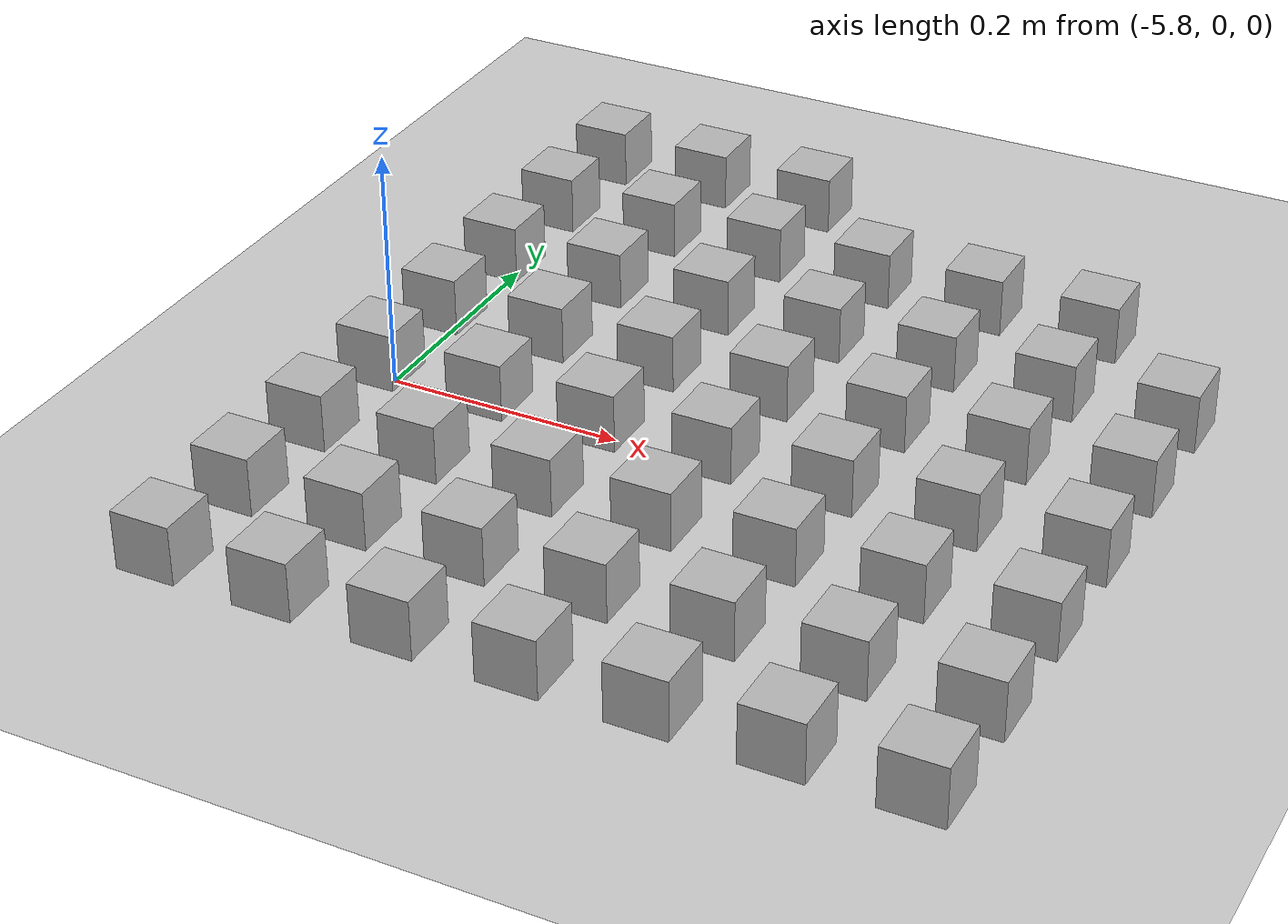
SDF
<sdf version="1.4">
 <world name="default">
  <model name="ground_plane">
   <static>1</static>
   <link name="link">
    <collision name="collision">
     <geometry><plane><normal>0 0 1</normal><size>100 100</size></plane></geometry>
     <surface><friction><ode><mu>100</mu><mu2>50</mu2></ode></friction></surface>
    </collision>
    <visual name="visual">
     <cast_shadows>0</cast_shadows>
     <geometry><plane><normal>0 0 1</normal><size>100 100</size></plane></geometry>
     <material>
      <script><uri>file://media/materials/scripts/gazebo.material</uri><name>Gazebo/Grey</name></script>
     </material>
    </visual>
    <velocity_decay><linear>0</linear><angular>0</angular></velocity_decay>
   </link>
  </model>
  <model name="at0">
   <static>0</static>
   <link name="link">
    <inertial>
     <mass>0.01</mass>
     <inertia><ixx>4e-05</ixx><ixy>0</ixy><ixz>0</ixz><iyy>4e-05</iyy><iyz>0</iyz><izz>4e-05</izz></inertia>
    </inertial>
    <visual name="visual">
     <geometry><box><size>0.05 0.05 0.05</size></box></geometry>
     <material>
      <script>
       <uri>model://at0/materials/scripts</uri>
       <uri>model://at0/materials/textures</uri>
       <name>at0/Diffuse</name>
      </script>
     </material>
    </visual>
    <collision name="collision">
     <geometry><box><size>0.05 0.05 0.05</size></box></geometry>
     <surface><friction><ode><mu>0.8</mu><mu2>0.7</mu2></ode></friction></surface>
    </collision>
    <velocity_decay><linear>0</linear><angular>0</angular></velocity_decay>
   </link>
   <pose>-5.81833 -0.290348 0.025 0 -0 0</pose>
  </model>
  <model name="at1">
   <static>0</static>
   <link name="link">
    <inertial>
     <mass>0.01</mass>
     <inertia><ixx>4e-05</ixx><ixy>0</ixy><ixz>0</ixz><iyy>4e-05</iyy><iyz>0</iyz><izz>4e-05</izz></inertia>
    </inertial>
    <visual name="visual">
     <geometry><box><size>0.05 0.05 0.05</size></box></geometry>
     <material>
      <script>
       <uri>model://at0/materials/scripts</uri>
       <uri>model://at0/materials/textures</uri>
       <name>at0/Diffuse</name>
      </script>
     </material>
    </visual>
    <collision name="collision">
     <geometry><box><size>0.05 0.05 0.05</size></box></geometry>
     <surface><friction><ode><mu>0.8</mu><mu2>0.7</mu2></ode></friction></surface>
    </collision>
    <velocity_decay><linear>0</linear><angular>0</angular></velocity_decay>
   </link>
   <pose>-5.71833 -0.290348 0.025 0 -0 0</pose>
  </model>
  <model name="at2">
   <static>0</static>
   <link name="link">
    <inertial>
     <mass>0.01</mass>
     <inertia><ixx>4e-05</ixx><ixy>0</ixy><ixz>0</ixz><iyy>4e-05</iyy><iyz>0</iyz><izz>4e-05</izz></inertia>
    </inertial>
    <visual name="visual">
     <geometry><box><size>0.05 0.05 0.05</size></box></geometry>
     <material>
      <script>
       <uri>model://at0/materials/scripts</uri>
       <uri>model://at0/materials/textures</uri>
       <name>at0/Diffuse</name>
      </script>
     </material>
    </visual>
    <collision name="collision">
     <geometry><box><size>0.05 0.05 0.05</size></box></geometry>
     <surface><friction><ode><mu>0.8</mu><mu2>0.7</mu2></ode></friction></surface>
    </collision>
    <velocity_decay><linear>0</linear><angular>0</angular></velocity_decay>
   </link>
   <pose>-5.61833 -0.290348 0.025 0 -0 0</pose>
  </model>
  <model name="at3">
   <static>0</static>
   <link name="link">
    <inertial>
     <mass>0.01</mass>
     <inertia><ixx>4e-05</ixx><ixy>0</ixy><ixz>0</ixz><iyy>4e-05</iyy><iyz>0</iyz><izz>4e-05</izz></inertia>
    </inertial>
    <visual name="visual">
     <geometry><box><size>0.05 0.05 0.05</size></box></geometry>
     <material>
      <script>
       <uri>model://at0/materials/scripts</uri>
       <uri>model://at0/materials/textures</uri>
       <name>at0/Diffuse</name>
      </script>
     </material>
    </visual>
    <collision name="collision">
     <geometry><box><size>0.05 0.05 0.05</size></box></geometry>
     <surface><friction><ode><mu>0.8</mu><mu2>0.7</mu2></ode></friction></surface>
    </collision>
    <velocity_decay><linear>0</linear><angular>0</angular></velocity_decay>
   </link>
   <pose>-5.51833 -0.290348 0.025 0 -0 0</pose>
  </model>
  <model name="at4">
   <static>0</static>
   <link name="link">
    <inertial>
     <mass>0.01</mass>
     <inertia><ixx>4e-05</ixx><ixy>0</ixy><ixz>0</ixz><iyy>4e-05</iyy><iyz>0</iyz><izz>4e-05</izz></inertia>
    </inertial>
    <visual name="visual">
     <geometry><box><size>0.05 0.05 0.05</size></box></geometry>
     <material>
      <script>
       <uri>model://at0/materials/scripts</uri>
       <uri>model://at0/materials/textures</uri>
       <name>at0/Diffuse</name>
      </script>
     </material>
    </visual>
    <collision name="collision">
     <geometry><box><size>0.05 0.05 0.05</size></box></geometry>
     <surface><friction><ode><mu>0.8</mu><mu2>0.7</mu2></ode></friction></surface>
    </collision>
    <velocity_decay><linear>0</linear><angular>0</angular></velocity_decay>
   </link>
   <pose>-5.41833 -0.290348 0.025 0 -0 0</pose>
  </model>
  <model name="at5">
   <static>0</static>
   <link name="link">
    <inertial>
     <mass>0.01</mass>
     <inertia><ixx>4e-05</ixx><ixy>0</ixy><ixz>0</ixz><iyy>4e-05</iyy><iyz>0</iyz><izz>4e-05</izz></inertia>
    </inertial>
    <visual name="visual">
     <geometry><box><size>0.05 0.05 0.05</size></box></geometry>
     <material>
      <script>
       <uri>model://at0/materials/scripts</uri>
       <uri>model://at0/materials/textures</uri>
       <name>at0/Diffuse</name>
      </script>
     </material>
    </visual>
    <collision name="collision">
     <geometry><box><size>0.05 0.05 0.05</size></box></geometry>
     <surface><friction><ode><mu>0.8</mu><mu2>0.7</mu2></ode></friction></surface>
    </collision>
    <velocity_decay><linear>0</linear><angular>0</angular></velocity_decay>
   </link>
   <pose>-5.31833 -0.290348 0.025 0 -0 0</pose>
  </model>
  <model name="at6">
   <static>0</static>
   <link name="link">
    <inertial>
     <mass>0.01</mass>
     <inertia><ixx>4e-05</ixx><ixy>0</ixy><ixz>0</ixz><iyy>4e-05</iyy><iyz>0</iyz><izz>4e-05</izz></inertia>
    </inertial>
    <visual name="visual">
     <geometry><box><size>0.05 0.05 0.05</size></box></geometry>
     <material>
      <script>
       <uri>model://at0/materials/scripts</uri>
       <uri>model://at0/materials/textures</uri>
       <name>at0/Diffuse</name>
      </script>
     </material>
    </visual>
    <collision name="collision">
     <geometry><box><size>0.05 0.05 0.05</size></box></geometry>
     <surface><friction><ode><mu>0.8</mu><mu2>0.7</mu2></ode></friction></surface>
    </collision>
    <velocity_decay><linear>0</linear><angular>0</angular></velocity_decay>
   </link>
   <pose>-5.21833 -0.290348 0.025 0 -0 0</pose>
  </model>
  <model name="at16">
   <static>0</static>
   <link name="link">
    <inertial>
     <mass>0.01</mass>
     <inertia><ixx>4e-05</ixx><ixy>0</ixy><ixz>0</ixz><iyy>4e-05</iyy><iyz>0</iyz><izz>4e-05</izz></inertia>
    </inertial>
    <visual name="visual">
     <geometry><box><size>0.05 0.05 0.05</size></box></geometry>
     <material>
      <script>
       <uri>model://at0/materials/scripts</uri>
       <uri>model://at0/materials/textures</uri>
       <name>at0/Diffuse</name>
      </script>
     </material>
    </visual>
    <collision name="collision">
     <geometry><box><size>0.05 0.05 0.05</size></box></geometry>
     <surface><friction><ode><mu>0.8</mu><mu2>0.7</mu2></ode></friction></surface>
    </collision>
    <velocity_decay><linear>0</linear><angular>0</angular></velocity_decay>
   </link>
   <pose>-5.81833 -0.190348 0.025 0 -0 0</pose>
  </model>
  <model name="at17">
   <static>0</static>
   <link name="link">
    <inertial>
     <mass>0.01</mass>
     <inertia><ixx>4e-05</ixx><ixy>0</ixy><ixz>0</ixz><iyy>4e-05</iyy><iyz>0</iyz><izz>4e-05</izz></inertia>
    </inertial>
    <visual name="visual">
     <geometry><box><size>0.05 0.05 0.05</size></box></geometry>
     <material>
      <script>
       <uri>model://at0/materials/scripts</uri>
       <uri>model://at0/materials/textures</uri>
       <name>at0/Diffuse</name>
      </script>
     </material>
    </visual>
    <collision name="collision">
     <geometry><box><size>0.05 0.05 0.05</size></box></geometry>
     <surface><friction><ode><mu>0.8</mu><mu2>0.7</mu2></ode></friction></surface>
    </collision>
    <velocity_decay><linear>0</linear><angular>0</angular></velocity_decay>
   </link>
   <pose>-5.71833 -0.190348 0.025 0 -0 0</pose>
  </model>
  <model name="at18">
   <static>0</static>
   <link name="link">
    <inertial>
     <mass>0.01</mass>
     <inertia><ixx>4e-05</ixx><ixy>0</ixy><ixz>0</ixz><iyy>4e-05</iyy><iyz>0</iyz><izz>4e-05</izz></inertia>
    </inertial>
    <visual name="visual">
     <geometry><box><size>0.05 0.05 0.05</size></box></geometry>
     <material>
      <script>
       <uri>model://at0/materials/scripts</uri>
       <uri>model://at0/materials/textures</uri>
       <name>at0/Diffuse</name>
      </script>
     </material>
    </visual>
    <collision name="collision">
     <geometry><box><size>0.05 0.05 0.05</size></box></geometry>
     <surface><friction><ode><mu>0.8</mu><mu2>0.7</mu2></ode></friction></surface>
    </collision>
    <velocity_decay><linear>0</linear><angular>0</angular></velocity_decay>
   </link>
   <pose>-5.61833 -0.190348 0.025 0 -0 0</pose>
  </model>
  <model name="at19">
   <static>0</static>
   <link name="link">
    <inertial>
     <mass>0.01</mass>
     <inertia><ixx>4e-05</ixx><ixy>0</ixy><ixz>0</ixz><iyy>4e-05</iyy><iyz>0</iyz><izz>4e-05</izz></inertia>
    </inertial>
    <visual name="visual">
     <geometry><box><size>0.05 0.05 0.05</size></box></geometry>
     <material>
      <script>
       <uri>model://at0/materials/scripts</uri>
       <uri>model://at0/materials/textures</uri>
       <name>at0/Diffuse</name>
      </script>
     </material>
    </visual>
    <collision name="collision">
     <geometry><box><size>0.05 0.05 0.05</size></box></geometry>
     <surface><friction><ode><mu>0.8</mu><mu2>0.7</mu2></ode></friction></surface>
    </collision>
    <velocity_decay><linear>0</linear><angular>0</angular></velocity_decay>
   </link>
   <pose>-5.51833 -0.190348 0.025 0 -0 0</pose>
  </model>
  <model name="at20">
   <static>0</static>
   <link name="link">
    <inertial>
     <mass>0.01</mass>
     <inertia><ixx>4e-05</ixx><ixy>0</ixy><ixz>0</ixz><iyy>4e-05</iyy><iyz>0</iyz><izz>4e-05</izz></inertia>
    </inertial>
    <visual name="visual">
     <geometry><box><size>0.05 0.05 0.05</size></box></geometry>
     <material>
      <script>
       <uri>model://at0/materials/scripts</uri>
       <uri>model://at0/materials/textures</uri>
       <name>at0/Diffuse</name>
      </script>
     </material>
    </visual>
    <collision name="collision">
     <geometry><box><size>0.05 0.05 0.05</size></box></geometry>
     <surface><friction><ode><mu>0.8</mu><mu2>0.7</mu2></ode></friction></surface>
    </collision>
    <velocity_decay><linear>0</linear><angular>0</angular></velocity_decay>
   </link>
   <pose>-5.41833 -0.190348 0.025 0 -0 0</pose>
  </model>
  <model name="at21">
   <static>0</static>
   <link name="link">
    <inertial>
     <mass>0.01</mass>
     <inertia><ixx>4e-05</ixx><ixy>0</ixy><ixz>0</ixz><iyy>4e-05</iyy><iyz>0</iyz><izz>4e-05</izz></inertia>
    </inertial>
    <visual name="visual">
     <geometry><box><size>0.05 0.05 0.05</size></box></geometry>
     <material>
      <script>
       <uri>model://at0/materials/scripts</uri>
       <uri>model://at0/materials/textures</uri>
       <name>at0/Diffuse</name>
      </script>
     </material>
    </visual>
    <collision name="collision">
     <geometry><box><size>0.05 0.05 0.05</size></box></geometry>
     <surface><friction><ode><mu>0.8</mu><mu2>0.7</mu2></ode></friction></surface>
    </collision>
    <velocity_decay><linear>0</linear><angular>0</angular></velocity_decay>
   </link>
   <pose>-5.31833 -0.190348 0.025 0 -0 0</pose>
  </model>
  <model name="at22">
   <static>0</static>
   <link name="link">
    <inertial>
     <mass>0.01</mass>
     <inertia><ixx>4e-05</ixx><ixy>0</ixy><ixz>0</ixz><iyy>4e-05</iyy><iyz>0</iyz><izz>4e-05</izz></inertia>
    </inertial>
    <visual name="visual">
     <geometry><box><size>0.05 0.05 0.05</size></box></geometry>
     <material>
      <script>
       <uri>model://at0/materials/scripts</uri>
       <uri>model://at0/materials/textures</uri>
       <name>at0/Diffuse</name>
      </script>
     </material>
    </visual>
    <collision name="collision">
     <geometry><box><size>0.05 0.05 0.05</size></box></geometry>
     <surface><friction><ode><mu>0.8</mu><mu2>0.7</mu2></ode></friction></surface>
    </collision>
    <velocity_decay><linear>0</linear><angular>0</angular></velocity_decay>
   </link>
   <pose>-5.21833 -0.190348 0.025 0 -0 0</pose>
  </model>
  <model name="at32">
   <static>0</static>
   <link name="link">
    <inertial>
     <mass>0.01</mass>
     <inertia><ixx>4e-05</ixx><ixy>0</ixy><ixz>0</ixz><iyy>4e-05</iyy><iyz>0</iyz><izz>4e-05</izz></inertia>
    </inertial>
    <visual name="visual">
     <geometry><box><size>0.05 0.05 0.05</size></box></geometry>
     <material>
      <script>
       <uri>model://at0/materials/scripts</uri>
       <uri>model://at0/materials/textures</uri>
       <name>at0/Diffuse</name>
      </script>
     </material>
    </visual>
    <collision name="collision">
     <geometry><box><size>0.05 0.05 0.05</size></box></geometry>
     <surface><friction><ode><mu>0.8</mu><mu2>0.7</mu2></ode></friction></surface>
    </collision>
    <velocity_decay><linear>0</linear><angular>0</angular></velocity_decay>
   </link>
   <pose>-5.81833 -0.090348 0.025 0 -0 0</pose>
  </model>
  <model name="at33">
   <static>0</static>
   <link name="link">
    <inertial>
     <mass>0.01</mass>
     <inertia><ixx>4e-05</ixx><ixy>0</ixy><ixz>0</ixz><iyy>4e-05</iyy><iyz>0</iyz><izz>4e-05</izz></inertia>
    </inertial>
    <visual name="visual">
     <geometry><box><size>0.05 0.05 0.05</size></box></geometry>
     <material>
      <script>
       <uri>model://at0/materials/scripts</uri>
       <uri>model://at0/materials/textures</uri>
       <name>at0/Diffuse</name>
      </script>
     </material>
    </visual>
    <collision name="collision">
     <geometry><box><size>0.05 0.05 0.05</size></box></geometry>
     <surface><friction><ode><mu>0.8</mu><mu2>0.7</mu2></ode></friction></surface>
    </collision>
    <velocity_decay><linear>0</linear><angular>0</angular></velocity_decay>
   </link>
   <pose>-5.71833 -0.090348 0.025 0 -0 0</pose>
  </model>
  <model name="at34">
   <static>0</static>
   <link name="link">
    <inertial>
     <mass>0.01</mass>
     <inertia><ixx>4e-05</ixx><ixy>0</ixy><ixz>0</ixz><iyy>4e-05</iyy><iyz>0</iyz><izz>4e-05</izz></inertia>
    </inertial>
    <visual name="visual">
     <geometry><box><size>0.05 0.05 0.05</size></box></geometry>
     <material>
      <script>
       <uri>model://at0/materials/scripts</uri>
       <uri>model://at0/materials/textures</uri>
       <name>at0/Diffuse</name>
      </script>
     </material>
    </visual>
    <collision name="collision">
     <geometry><box><size>0.05 0.05 0.05</size></box></geometry>
     <surface><friction><ode><mu>0.8</mu><mu2>0.7</mu2></ode></friction></surface>
    </collision>
    <velocity_decay><linear>0</linear><angular>0</angular></velocity_decay>
   </link>
   <pose>-5.61833 -0.090348 0.025 0 -0 0</pose>
  </model>
  <model name="at35">
   <static>0</static>
   <link name="link">
    <inertial>
     <mass>0.01</mass>
     <inertia><ixx>4e-05</ixx><ixy>0</ixy><ixz>0</ixz><iyy>4e-05</iyy><iyz>0</iyz><izz>4e-05</izz></inertia>
    </inertial>
    <visual name="visual">
     <geometry><box><size>0.05 0.05 0.05</size></box></geometry>
     <material>
      <script>
       <uri>model://at0/materials/scripts</uri>
       <uri>model://at0/materials/textures</uri>
       <name>at0/Diffuse</name>
      </script>
     </material>
    </visual>
    <collision name="collision">
     <geometry><box><size>0.05 0.05 0.05</size></box></geometry>
     <surface><friction><ode><mu>0.8</mu><mu2>0.7</mu2></ode></friction></surface>
    </collision>
    <velocity_decay><linear>0</linear><angular>0</angular></velocity_decay>
   </link>
   <pose>-5.51833 -0.090348 0.025 0 -0 0</pose>
  </model>
  <model name="at36">
   <static>0</static>
   <link name="link">
    <inertial>
     <mass>0.01</mass>
     <inertia><ixx>4e-05</ixx><ixy>0</ixy><ixz>0</ixz><iyy>4e-05</iyy><iyz>0</iyz><izz>4e-05</izz></inertia>
    </inertial>
    <visual name="visual">
     <geometry><box><size>0.05 0.05 0.05</size></box></geometry>
     <material>
      <script>
       <uri>model://at0/materials/scripts</uri>
       <uri>model://at0/materials/textures</uri>
       <name>at0/Diffuse</name>
      </script>
     </material>
    </visual>
    <collision name="collision">
     <geometry><box><size>0.05 0.05 0.05</size></box></geometry>
     <surface><friction><ode><mu>0.8</mu><mu2>0.7</mu2></ode></friction></surface>
    </collision>
    <velocity_decay><linear>0</linear><angular>0</angular></velocity_decay>
   </link>
   <pose>-5.41833 -0.090348 0.025 0 -0 0</pose>
  </model>
  <model name="at37">
   <static>0</static>
   <link name="link">
    <inertial>
     <mass>0.01</mass>
     <inertia><ixx>4e-05</ixx><ixy>0</ixy><ixz>0</ixz><iyy>4e-05</iyy><iyz>0</iyz><izz>4e-05</izz></inertia>
    </inertial>
    <visual name="visual">
     <geometry><box><size>0.05 0.05 0.05</size></box></geometry>
     <material>
      <script>
       <uri>model://at0/materials/scripts</uri>
       <uri>model://at0/materials/textures</uri>
       <name>at0/Diffuse</name>
      </script>
     </material>
    </visual>
    <collision name="collision">
     <geometry><box><size>0.05 0.05 0.05</size></box></geometry>
     <surface><friction><ode><mu>0.8</mu><mu2>0.7</mu2></ode></friction></surface>
    </collision>
    <velocity_decay><linear>0</linear><angular>0</angular></velocity_decay>
   </link>
   <pose>-5.31833 -0.090348 0.025 0 -0 0</pose>
  </model>
  <model name="at38">
   <static>0</static>
   <link name="link">
    <inertial>
     <mass>0.01</mass>
     <inertia><ixx>4e-05</ixx><ixy>0</ixy><ixz>0</ixz><iyy>4e-05</iyy><iyz>0</iyz><izz>4e-05</izz></inertia>
    </inertial>
    <visual name="visual">
     <geometry><box><size>0.05 0.05 0.05</size></box></geometry>
     <material>
      <script>
       <uri>model://at0/materials/scripts</uri>
       <uri>model://at0/materials/textures</uri>
       <name>at0/Diffuse</name>
      </script>
     </material>
    </visual>
    <collision name="collision">
     <geometry><box><size>0.05 0.05 0.05</size></box></geometry>
     <surface><friction><ode><mu>0.8</mu><mu2>0.7</mu2></ode></friction></surface>
    </collision>
    <velocity_decay><linear>0</linear><angular>0</angular></velocity_decay>
   </link>
   <pose>-5.21833 -0.090348 0.025 0 -0 0</pose>
  </model>
  <model name="at48">
   <static>0</static>
   <link name="link">
    <inertial>
     <mass>0.01</mass>
     <inertia><ixx>4e-05</ixx><ixy>0</ixy><ixz>0</ixz><iyy>4e-05</iyy><iyz>0</iyz><izz>4e-05</izz></inertia>
    </inertial>
    <visual name="visual">
     <geometry><box><size>0.05 0.05 0.05</size></box></geometry>
     <material>
      <script>
       <uri>model://at0/materials/scripts</uri>
       <uri>model://at0/materials/textures</uri>
       <name>at0/Diffuse</name>
      </script>
     </material>
    </visual>
    <collision name="collision">
     <geometry><box><size>0.05 0.05 0.05</size></box></geometry>
     <surface><friction><ode><mu>0.8</mu><mu2>0.7</mu2></ode></friction></surface>
    </collision>
    <velocity_decay><linear>0</linear><angular>0</angular></velocity_decay>
   </link>
   <pose>-5.81833 0.009652 0.025 0 -0 0</pose>
  </model>
  <model name="at49">
   <static>0</static>
   <link name="link">
    <inertial>
     <mass>0.01</mass>
     <inertia><ixx>4e-05</ixx><ixy>0</ixy><ixz>0</ixz><iyy>4e-05</iyy><iyz>0</iyz><izz>4e-05</izz></inertia>
    </inertial>
    <visual name="visual">
     <geometry><box><size>0.05 0.05 0.05</size></box></geometry>
     <material>
      <script>
       <uri>model://at0/materials/scripts</uri>
       <uri>model://at0/materials/textures</uri>
       <name>at0/Diffuse</name>
      </script>
     </material>
    </visual>
    <collision name="collision">
     <geometry><box><size>0.05 0.05 0.05</size></box></geometry>
     <surface><friction><ode><mu>0.8</mu><mu2>0.7</mu2></ode></friction></surface>
    </collision>
    <velocity_decay><linear>0</linear><angular>0</angular></velocity_decay>
   </link>
   <pose>-5.71833 0.009652 0.025 0 -0 0</pose>
  </model>
  <model name="at50">
   <static>0</static>
   <link name="link">
    <inertial>
     <mass>0.01</mass>
     <inertia><ixx>4e-05</ixx><ixy>0</ixy><ixz>0</ixz><iyy>4e-05</iyy><iyz>0</iyz><izz>4e-05</izz></inertia>
    </inertial>
    <visual name="visual">
     <geometry><box><size>0.05 0.05 0.05</size></box></geometry>
     <material>
      <script>
       <uri>model://at0/materials/scripts</uri>
       <uri>model://at0/materials/textures</uri>
       <name>at0/Diffuse</name>
      </script>
     </material>
    </visual>
    <collision name="collision">
     <geometry><box><size>0.05 0.05 0.05</size></box></geometry>
     <surface><friction><ode><mu>0.8</mu><mu2>0.7</mu2></ode></friction></surface>
    </collision>
    <velocity_decay><linear>0</linear><angular>0</angular></velocity_decay>
   </link>
   <pose>-5.61833 0.009652 0.025 0 -0 0</pose>
  </model>
  <model name="at51">
   <static>0</static>
   <link name="link">
    <inertial>
     <mass>0.01</mass>
     <inertia><ixx>4e-05</ixx><ixy>0</ixy><ixz>0</ixz><iyy>4e-05</iyy><iyz>0</iyz><izz>4e-05</izz></inertia>
    </inertial>
    <visual name="visual">
     <geometry><box><size>0.05 0.05 0.05</size></box></geometry>
     <material>
      <script>
       <uri>model://at0/materials/scripts</uri>
       <uri>model://at0/materials/textures</uri>
       <name>at0/Diffuse</name>
      </script>
     </material>
    </visual>
    <collision name="collision">
     <geometry><box><size>0.05 0.05 0.05</size></box></geometry>
     <surface><friction><ode><mu>0.8</mu><mu2>0.7</mu2></ode></friction></surface>
    </collision>
    <velocity_decay><linear>0</linear><angular>0</angular></velocity_decay>
   </link>
   <pose>-5.51833 0.009652 0.025 0 -0 0</pose>
  </model>
  <model name="at52">
   <static>0</static>
   <link name="link">
    <inertial>
     <mass>0.01</mass>
     <inertia><ixx>4e-05</ixx><ixy>0</ixy><ixz>0</ixz><iyy>4e-05</iyy><iyz>0</iyz><izz>4e-05</izz></inertia>
    </inertial>
    <visual name="visual">
     <geometry><box><size>0.05 0.05 0.05</size></box></geometry>
     <material>
      <script>
       <uri>model://at0/materials/scripts</uri>
       <uri>model://at0/materials/textures</uri>
       <name>at0/Diffuse</name>
      </script>
     </material>
    </visual>
    <collision name="collision">
     <geometry><box><size>0.05 0.05 0.05</size></box></geometry>
     <surface><friction><ode><mu>0.8</mu><mu2>0.7</mu2></ode></friction></surface>
    </collision>
    <velocity_decay><linear>0</linear><angular>0</angular></velocity_decay>
   </link>
   <pose>-5.41833 0.009652 0.025 0 -0 0</pose>
  </model>
  <model name="at53">
   <static>0</static>
   <link name="link">
    <inertial>
     <mass>0.01</mass>
     <inertia><ixx>4e-05</ixx><ixy>0</ixy><ixz>0</ixz><iyy>4e-05</iyy><iyz>0</iyz><izz>4e-05</izz></inertia>
    </inertial>
    <visual name="visual">
     <geometry><box><size>0.05 0.05 0.05</size></box></geometry>
     <material>
      <script>
       <uri>model://at0/materials/scripts</uri>
       <uri>model://at0/materials/textures</uri>
       <name>at0/Diffuse</name>
      </script>
     </material>
    </visual>
    <collision name="collision">
     <geometry><box><size>0.05 0.05 0.05</size></box></geometry>
     <surface><friction><ode><mu>0.8</mu><mu2>0.7</mu2></ode></friction></surface>
    </collision>
    <velocity_decay><linear>0</linear><angular>0</angular></velocity_decay>
   </link>
   <pose>-5.31833 0.009652 0.025 0 -0 0</pose>
  </model>
  <model name="at54">
   <static>0</static>
   <link name="link">
    <inertial>
     <mass>0.01</mass>
     <inertia><ixx>4e-05</ixx><ixy>0</ixy><ixz>0</ixz><iyy>4e-05</iyy><iyz>0</iyz><izz>4e-05</izz></inertia>
    </inertial>
    <visual name="visual">
     <geometry><box><size>0.05 0.05 0.05</size></box></geometry>
     <material>
      <script>
       <uri>model://at0/materials/scripts</uri>
       <uri>model://at0/materials/textures</uri>
       <name>at0/Diffuse</name>
      </script>
     </material>
    </visual>
    <collision name="collision">
     <geometry><box><size>0.05 0.05 0.05</size></box></geometry>
     <surface><friction><ode><mu>0.8</mu><mu2>0.7</mu2></ode></friction></surface>
    </collision>
    <velocity_decay><linear>0</linear><angular>0</angular></velocity_decay>
   </link>
   <pose>-5.21833 0.009652 0.025 0 -0 0</pose>
  </model>
  <model name="at64">
   <static>0</static>
   <link name="link">
    <inertial>
     <mass>0.01</mass>
     <inertia><ixx>4e-05</ixx><ixy>0</ixy><ixz>0</ixz><iyy>4e-05</iyy><iyz>0</iyz><izz>4e-05</izz></inertia>
    </inertial>
    <visual name="visual">
     <geometry><box><size>0.05 0.05 0.05</size></box></geometry>
     <material>
      <script>
       <uri>model://at0/materials/scripts</uri>
       <uri>model://at0/materials/textures</uri>
       <name>at0/Diffuse</name>
      </script>
     </material>
    </visual>
    <collision name="collision">
     <geometry><box><size>0.05 0.05 0.05</size></box></geometry>
     <surface><friction><ode><mu>0.8</mu><mu2>0.7</mu2></ode></friction></surface>
    </collision>
    <velocity_decay><linear>0</linear><angular>0</angular></velocity_decay>
   </link>
   <pose>-5.81833 0.109652 0.025 0 -0 0</pose>
  </model>
  <model name="at65">
   <static>0</static>
   <link name="link">
    <inertial>
     <mass>0.01</mass>
     <inertia><ixx>4e-05</ixx><ixy>0</ixy><ixz>0</ixz><iyy>4e-05</iyy><iyz>0</iyz><izz>4e-05</izz></inertia>
    </inertial>
    <visual name="visual">
     <geometry><box><size>0.05 0.05 0.05</size></box></geometry>
     <material>
      <script>
       <uri>model://at0/materials/scripts</uri>
       <uri>model://at0/materials/textures</uri>
       <name>at0/Diffuse</name>
      </script>
     </material>
    </visual>
    <collision name="collision">
     <geometry><box><size>0.05 0.05 0.05</size></box></geometry>
     <surface><friction><ode><mu>0.8</mu><mu2>0.7</mu2></ode></friction></surface>
    </collision>
    <velocity_decay><linear>0</linear><angular>0</angular></velocity_decay>
   </link>
   <pose>-5.71833 0.109652 0.025 0 -0 0</pose>
  </model>
  <model name="at66">
   <static>0</static>
   <link name="link">
    <inertial>
     <mass>0.01</mass>
     <inertia><ixx>4e-05</ixx><ixy>0</ixy><ixz>0</ixz><iyy>4e-05</iyy><iyz>0</iyz><izz>4e-05</izz></inertia>
    </inertial>
    <visual name="visual">
     <geometry><box><size>0.05 0.05 0.05</size></box></geometry>
     <material>
      <script>
       <uri>model://at0/materials/scripts</uri>
       <uri>model://at0/materials/textures</uri>
       <name>at0/Diffuse</name>
      </script>
     </material>
    </visual>
    <collision name="collision">
     <geometry><box><size>0.05 0.05 0.05</size></box></geometry>
     <surface><friction><ode><mu>0.8</mu><mu2>0.7</mu2></ode></friction></surface>
    </collision>
    <velocity_decay><linear>0</linear><angular>0</angular></velocity_decay>
   </link>
   <pose>-5.61833 0.109652 0.025 0 -0 0</pose>
  </model>
  <model name="at67">
   <static>0</static>
   <link name="link">
    <inertial>
     <mass>0.01</mass>
     <inertia><ixx>4e-05</ixx><ixy>0</ixy><ixz>0</ixz><iyy>4e-05</iyy><iyz>0</iyz><izz>4e-05</izz></inertia>
    </inertial>
    <visual name="visual">
     <geometry><box><size>0.05 0.05 0.05</size></box></geometry>
     <material>
      <script>
       <uri>model://at0/materials/scripts</uri>
       <uri>model://at0/materials/textures</uri>
       <name>at0/Diffuse</name>
      </script>
     </material>
    </visual>
    <collision name="collision">
     <geometry><box><size>0.05 0.05 0.05</size></box></geometry>
     <surface><friction><ode><mu>0.8</mu><mu2>0.7</mu2></ode></friction></surface>
    </collision>
    <velocity_decay><linear>0</linear><angular>0</angular></velocity_decay>
   </link>
   <pose>-5.51833 0.109652 0.025 0 -0 0</pose>
  </model>
  <model name="at68">
   <static>0</static>
   <link name="link">
    <inertial>
     <mass>0.01</mass>
     <inertia><ixx>4e-05</ixx><ixy>0</ixy><ixz>0</ixz><iyy>4e-05</iyy><iyz>0</iyz><izz>4e-05</izz></inertia>
    </inertial>
    <visual name="visual">
     <geometry><box><size>0.05 0.05 0.05</size></box></geometry>
     <material>
      <script>
       <uri>model://at0/materials/scripts</uri>
       <uri>model://at0/materials/textures</uri>
       <name>at0/Diffuse</name>
      </script>
     </material>
    </visual>
    <collision name="collision">
     <geometry><box><size>0.05 0.05 0.05</size></box></geometry>
     <surface><friction><ode><mu>0.8</mu><mu2>0.7</mu2></ode></friction></surface>
    </collision>
    <velocity_decay><linear>0</linear><angular>0</angular></velocity_decay>
   </link>
   <pose>-5.41833 0.109652 0.025 0 -0 0</pose>
  </model>
  <model name="at69">
   <static>0</static>
   <link name="link">
    <inertial>
     <mass>0.01</mass>
     <inertia><ixx>4e-05</ixx><ixy>0</ixy><ixz>0</ixz><iyy>4e-05</iyy><iyz>0</iyz><izz>4e-05</izz></inertia>
    </inertial>
    <visual name="visual">
     <geometry><box><size>0.05 0.05 0.05</size></box></geometry>
     <material>
      <script>
       <uri>model://at0/materials/scripts</uri>
       <uri>model://at0/materials/textures</uri>
       <name>at0/Diffuse</name>
      </script>
     </material>
    </visual>
    <collision name="collision">
     <geometry><box><size>0.05 0.05 0.05</size></box></geometry>
     <surface><friction><ode><mu>0.8</mu><mu2>0.7</mu2></ode></friction></surface>
    </collision>
    <velocity_decay><linear>0</linear><angular>0</angular></velocity_decay>
   </link>
   <pose>-5.31833 0.109652 0.025 0 -0 0</pose>
  </model>
  <model name="at70">
   <static>0</static>
   <link name="link">
    <inertial>
     <mass>0.01</mass>
     <inertia><ixx>4e-05</ixx><ixy>0</ixy><ixz>0</ixz><iyy>4e-05</iyy><iyz>0</iyz><izz>4e-05</izz></inertia>
    </inertial>
    <visual name="visual">
     <geometry><box><size>0.05 0.05 0.05</size></box></geometry>
     <material>
      <script>
       <uri>model://at0/materials/scripts</uri>
       <uri>model://at0/materials/textures</uri>
       <name>at0/Diffuse</name>
      </script>
     </material>
    </visual>
    <collision name="collision">
     <geometry><box><size>0.05 0.05 0.05</size></box></geometry>
     <surface><friction><ode><mu>0.8</mu><mu2>0.7</mu2></ode></friction></surface>
    </collision>
    <velocity_decay><linear>0</linear><angular>0</angular></velocity_decay>
   </link>
   <pose>-5.21833 0.109652 0.025 0 -0 0</pose>
  </model>
  <model name="at80">
   <static>0</static>
   <link name="link">
    <inertial>
     <mass>0.01</mass>
     <inertia><ixx>4e-05</ixx><ixy>0</ixy><ixz>0</ixz><iyy>4e-05</iyy><iyz>0</iyz><izz>4e-05</izz></inertia>
    </inertial>
    <visual name="visual">
     <geometry><box><size>0.05 0.05 0.05</size></box></geometry>
     <material>
      <script>
       <uri>model://at0/materials/scripts</uri>
       <uri>model://at0/materials/textures</uri>
       <name>at0/Diffuse</name>
      </script>
     </material>
    </visual>
    <collision name="collision">
     <geometry><box><size>0.05 0.05 0.05</size></box></geometry>
     <surface><friction><ode><mu>0.8</mu><mu2>0.7</mu2></ode></friction></surface>
    </collision>
    <velocity_decay><linear>0</linear><angular>0</angular></velocity_decay>
   </link>
   <pose>-5.81833 0.209652 0.025 0 -0 0</pose>
  </model>
  <model name="at81">
   <static>0</static>
   <link name="link">
    <inertial>
     <mass>0.01</mass>
     <inertia><ixx>4e-05</ixx><ixy>0</ixy><ixz>0</ixz><iyy>4e-05</iyy><iyz>0</iyz><izz>4e-05</izz></inertia>
    </inertial>
    <visual name="visual">
     <geometry><box><size>0.05 0.05 0.05</size></box></geometry>
     <material>
      <script>
       <uri>model://at0/materials/scripts</uri>
       <uri>model://at0/materials/textures</uri>
       <name>at0/Diffuse</name>
      </script>
     </material>
    </visual>
    <collision name="collision">
     <geometry><box><size>0.05 0.05 0.05</size></box></geometry>
     <surface><friction><ode><mu>0.8</mu><mu2>0.7</mu2></ode></friction></surface>
    </collision>
    <velocity_decay><linear>0</linear><angular>0</angular></velocity_decay>
   </link>
   <pose>-5.71833 0.209652 0.025 0 -0 0</pose>
  </model>
  <model name="at82">
   <static>0</static>
   <link name="link">
    <inertial>
     <mass>0.01</mass>
     <inertia><ixx>4e-05</ixx><ixy>0</ixy><ixz>0</ixz><iyy>4e-05</iyy><iyz>0</iyz><izz>4e-05</izz></inertia>
    </inertial>
    <visual name="visual">
     <geometry><box><size>0.05 0.05 0.05</size></box></geometry>
     <material>
      <script>
       <uri>model://at0/materials/scripts</uri>
       <uri>model://at0/materials/textures</uri>
       <name>at0/Diffuse</name>
      </script>
     </material>
    </visual>
    <collision name="collision">
     <geometry><box><size>0.05 0.05 0.05</size></box></geometry>
     <surface><friction><ode><mu>0.8</mu><mu2>0.7</mu2></ode></friction></surface>
    </collision>
    <velocity_decay><linear>0</linear><angular>0</angular></velocity_decay>
   </link>
   <pose>-5.61833 0.209652 0.025 0 -0 0</pose>
  </model>
  <model name="at83">
   <static>0</static>
   <link name="link">
    <inertial>
     <mass>0.01</mass>
     <inertia><ixx>4e-05</ixx><ixy>0</ixy><ixz>0</ixz><iyy>4e-05</iyy><iyz>0</iyz><izz>4e-05</izz></inertia>
    </inertial>
    <visual name="visual">
     <geometry><box><size>0.05 0.05 0.05</size></box></geometry>
     <material>
      <script>
       <uri>model://at0/materials/scripts</uri>
       <uri>model://at0/materials/textures</uri>
       <name>at0/Diffuse</name>
      </script>
     </material>
    </visual>
    <collision name="collision">
     <geometry><box><size>0.05 0.05 0.05</size></box></geometry>
     <surface><friction><ode><mu>0.8</mu><mu2>0.7</mu2></ode></friction></surface>
    </collision>
    <velocity_decay><linear>0</linear><angular>0</angular></velocity_decay>
   </link>
   <pose>-5.51833 0.209652 0.025 0 -0 0</pose>
  </model>
  <model name="at84">
   <static>0</static>
   <link name="link">
    <inertial>
     <mass>0.01</mass>
     <inertia><ixx>4e-05</ixx><ixy>0</ixy><ixz>0</ixz><iyy>4e-05</iyy><iyz>0</iyz><izz>4e-05</izz></inertia>
    </inertial>
    <visual name="visual">
     <geometry><box><size>0.05 0.05 0.05</size></box></geometry>
     <material>
      <script>
       <uri>model://at0/materials/scripts</uri>
       <uri>model://at0/materials/textures</uri>
       <name>at0/Diffuse</name>
      </script>
     </material>
    </visual>
    <collision name="collision">
     <geometry><box><size>0.05 0.05 0.05</size></box></geometry>
     <surface><friction><ode><mu>0.8</mu><mu2>0.7</mu2></ode></friction></surface>
    </collision>
    <velocity_decay><linear>0</linear><angular>0</angular></velocity_decay>
   </link>
   <pose>-5.41833 0.209652 0.025 0 -0 0</pose>
  </model>
  <model name="at85">
   <static>0</static>
   <link name="link">
    <inertial>
     <mass>0.01</mass>
     <inertia><ixx>4e-05</ixx><ixy>0</ixy><ixz>0</ixz><iyy>4e-05</iyy><iyz>0</iyz><izz>4e-05</izz></inertia>
    </inertial>
    <visual name="visual">
     <geometry><box><size>0.05 0.05 0.05</size></box></geometry>
     <material>
      <script>
       <uri>model://at0/materials/scripts</uri>
       <uri>model://at0/materials/textures</uri>
       <name>at0/Diffuse</name>
      </script>
     </material>
    </visual>
    <collision name="collision">
     <geometry><box><size>0.05 0.05 0.05</size></box></geometry>
     <surface><friction><ode><mu>0.8</mu><mu2>0.7</mu2></ode></friction></surface>
    </collision>
    <velocity_decay><linear>0</linear><angular>0</angular></velocity_decay>
   </link>
   <pose>-5.31833 0.209652 0.025 0 -0 0</pose>
  </model>
  <model name="at86">
   <static>0</static>
   <link name="link">
    <inertial>
     <mass>0.01</mass>
     <inertia><ixx>4e-05</ixx><ixy>0</ixy><ixz>0</ixz><iyy>4e-05</iyy><iyz>0</iyz><izz>4e-05</izz></inertia>
    </inertial>
    <visual name="visual">
     <geometry><box><size>0.05 0.05 0.05</size></box></geometry>
     <material>
      <script>
       <uri>model://at0/materials/scripts</uri>
       <uri>model://at0/materials/textures</uri>
       <name>at0/Diffuse</name>
      </script>
     </material>
    </visual>
    <collision name="collision">
     <geometry><box><size>0.05 0.05 0.05</size></box></geometry>
     <surface><friction><ode><mu>0.8</mu><mu2>0.7</mu2></ode></friction></surface>
    </collision>
    <velocity_decay><linear>0</linear><angular>0</angular></velocity_decay>
   </link>
   <pose>-5.21833 0.209652 0.025 0 -0 0</pose>
  </model>
  <model name="at96">
   <static>0</static>
   <link name="link">
    <inertial>
     <mass>0.01</mass>
     <inertia><ixx>4e-05</ixx><ixy>0</ixy><ixz>0</ixz><iyy>4e-05</iyy><iyz>0</iyz><izz>4e-05</izz></inertia>
    </inertial>
    <visual name="visual">
     <geometry><box><size>0.05 0.05 0.05</size></box></geometry>
     <material>
      <script>
       <uri>model://at0/materials/scripts</uri>
       <uri>model://at0/materials/textures</uri>
       <name>at0/Diffuse</name>
      </script>
     </material>
    </visual>
    <collision name="collision">
     <geometry><box><size>0.05 0.05 0.05</size></box></geometry>
     <surface><friction><ode><mu>0.8</mu><mu2>0.7</mu2></ode></friction></surface>
    </collision>
    <velocity_decay><linear>0</linear><angular>0</angular></velocity_decay>
   </link>
   <pose>-5.81833 0.309652 0.025 0 -0 0</pose>
  </model>
  <model name="at97">
   <static>0</static>
   <link name="link">
    <inertial>
     <mass>0.01</mass>
     <inertia><ixx>4e-05</ixx><ixy>0</ixy><ixz>0</ixz><iyy>4e-05</iyy><iyz>0</iyz><izz>4e-05</izz></inertia>
    </inertial>
    <visual name="visual">
     <geometry><box><size>0.05 0.05 0.05</size></box></geometry>
     <material>
      <script>
       <uri>model://at0/materials/scripts</uri>
       <uri>model://at0/materials/textures</uri>
       <name>at0/Diffuse</name>
      </script>
     </material>
    </visual>
    <collision name="collision">
     <geometry><box><size>0.05 0.05 0.05</size></box></geometry>
     <surface><friction><ode><mu>0.8</mu><mu2>0.7</mu2></ode></friction></surface>
    </collision>
    <velocity_decay><linear>0</linear><angular>0</angular></velocity_decay>
   </link>
   <pose>-5.71833 0.309652 0.025 0 -0 0</pose>
  </model>
  <model name="at98">
   <static>0</static>
   <link name="link">
    <inertial>
     <mass>0.01</mass>
     <inertia><ixx>4e-05</ixx><ixy>0</ixy><ixz>0</ixz><iyy>4e-05</iyy><iyz>0</iyz><izz>4e-05</izz></inertia>
    </inertial>
    <visual name="visual">
     <geometry><box><size>0.05 0.05 0.05</size></box></geometry>
     <material>
      <script>
       <uri>model://at0/materials/scripts</uri>
       <uri>model://at0/materials/textures</uri>
       <name>at0/Diffuse</name>
      </script>
     </material>
    </visual>
    <collision name="collision">
     <geometry><box><size>0.05 0.05 0.05</size></box></geometry>
     <surface><friction><ode><mu>0.8</mu><mu2>0.7</mu2></ode></friction></surface>
    </collision>
    <velocity_decay><linear>0</linear><angular>0</angular></velocity_decay>
   </link>
   <pose>-5.61833 0.309652 0.025 0 -0 0</pose>
  </model>
  <model name="at99">
   <static>0</static>
   <link name="link">
    <inertial>
     <mass>0.01</mass>
     <inertia><ixx>4e-05</ixx><ixy>0</ixy><ixz>0</ixz><iyy>4e-05</iyy><iyz>0</iyz><izz>4e-05</izz></inertia>
    </inertial>
    <visual name="visual">
     <geometry><box><size>0.05 0.05 0.05</size></box></geometry>
     <material>
      <script>
       <uri>model://at0/materials/scripts</uri>
       <uri>model://at0/materials/textures</uri>
       <name>at0/Diffuse</name>
      </script>
     </material>
    </visual>
    <collision name="collision">
     <geometry><box><size>0.05 0.05 0.05</size></box></geometry>
     <surface><friction><ode><mu>0.8</mu><mu2>0.7</mu2></ode></friction></surface>
    </collision>
    <velocity_decay><linear>0</linear><angular>0</angular></velocity_decay>
   </link>
   <pose>-5.51833 0.309652 0.025 0 -0 0</pose>
  </model>
  <model name="at100">
   <static>0</static>
   <link name="link">
    <inertial>
     <mass>0.01</mass>
     <inertia><ixx>4e-05</ixx><ixy>0</ixy><ixz>0</ixz><iyy>4e-05</iyy><iyz>0</iyz><izz>4e-05</izz></inertia>
    </inertial>
    <visual name="visual">
     <geometry><box><size>0.05 0.05 0.05</size></box></geometry>
     <material>
      <script>
       <uri>model://at0/materials/scripts</uri>
       <uri>model://at0/materials/textures</uri>
       <name>at0/Diffuse</name>
      </script>
     </material>
    </visual>
    <collision name="collision">
     <geometry><box><size>0.05 0.05 0.05</size></box></geometry>
     <surface><friction><ode><mu>0.8</mu><mu2>0.7</mu2></ode></friction></surface>
    </collision>
    <velocity_decay><linear>0</linear><angular>0</angular></velocity_decay>
   </link>
   <pose>-5.41833 0.309652 0.025 0 -0 0</pose>
  </model>
  <model name="at101">
   <static>0</static>
   <link name="link">
    <inertial>
     <mass>0.01</mass>
     <inertia><ixx>4e-05</ixx><ixy>0</ixy><ixz>0</ixz><iyy>4e-05</iyy><iyz>0</iyz><izz>4e-05</izz></inertia>
    </inertial>
    <visual name="visual">
     <geometry><box><size>0.05 0.05 0.05</size></box></geometry>
     <material>
      <script>
       <uri>model://at0/materials/scripts</uri>
       <uri>model://at0/materials/textures</uri>
       <name>at0/Diffuse</name>
      </script>
     </material>
    </visual>
    <collision name="collision">
     <geometry><box><size>0.05 0.05 0.05</size></box></geometry>
     <surface><friction><ode><mu>0.8</mu><mu2>0.7</mu2></ode></friction></surface>
    </collision>
    <velocity_decay><linear>0</linear><angular>0</angular></velocity_decay>
   </link>
   <pose>-5.31833 0.309652 0.025 0 -0 0</pose>
  </model>
  <model name="at112">
   <static>0</static>
   <link name="link">
    <inertial>
     <mass>0.01</mass>
     <inertia><ixx>4e-05</ixx><ixy>0</ixy><ixz>0</ixz><iyy>4e-05</iyy><iyz>0</iyz><izz>4e-05</izz></inertia>
    </inertial>
    <visual name="visual">
     <geometry><box><size>0.05 0.05 0.05</size></box></geometry>
     <material>
      <script>
       <uri>model://at0/materials/scripts</uri>
       <uri>model://at0/materials/textures</uri>
       <name>at0/Diffuse</name>
      </script>
     </material>
    </visual>
    <collision name="collision">
     <geometry><box><size>0.05 0.05 0.05</size></box></geometry>
     <surface><friction><ode><mu>0.8</mu><mu2>0.7</mu2></ode></friction></surface>
    </collision>
    <velocity_decay><linear>0</linear><angular>0</angular></velocity_decay>
   </link>
   <pose>-5.81833 0.409652 0.025 0 -0 0</pose>
  </model>
  <model name="at113">
   <static>0</static>
   <link name="link">
    <inertial>
     <mass>0.01</mass>
     <inertia><ixx>4e-05</ixx><ixy>0</ixy><ixz>0</ixz><iyy>4e-05</iyy><iyz>0</iyz><izz>4e-05</izz></inertia>
    </inertial>
    <visual name="visual">
     <geometry><box><size>0.05 0.05 0.05</size></box></geometry>
     <material>
      <script>
       <uri>model://at0/materials/scripts</uri>
       <uri>model://at0/materials/textures</uri>
       <name>at0/Diffuse</name>
      </script>
     </material>
    </visual>
    <collision name="collision">
     <geometry><box><size>0.05 0.05 0.05</size></box></geometry>
     <surface><friction><ode><mu>0.8</mu><mu2>0.7</mu2></ode></friction></surface>
    </collision>
    <velocity_decay><linear>0</linear><angular>0</angular></velocity_decay>
   </link>
   <pose>-5.71833 0.409652 0.025 0 -0 0</pose>
  </model>
  <model name="at114">
   <static>0</static>
   <link name="link">
    <inertial>
     <mass>0.01</mass>
     <inertia><ixx>4e-05</ixx><ixy>0</ixy><ixz>0</ixz><iyy>4e-05</iyy><iyz>0</iyz><izz>4e-05</izz></inertia>
    </inertial>
    <visual name="visual">
     <geometry><box><size>0.05 0.05 0.05</size></box></geometry>
     <material>
      <script>
       <uri>model://at0/materials/scripts</uri>
       <uri>model://at0/materials/textures</uri>
       <name>at0/Diffuse</name>
      </script>
     </material>
    </visual>
    <collision name="collision">
     <geometry><box><size>0.05 0.05 0.05</size></box></geometry>
     <surface><friction><ode><mu>0.8</mu><mu2>0.7</mu2></ode></friction></surface>
    </collision>
    <velocity_decay><linear>0</linear><angular>0</angular></velocity_decay>
   </link>
   <pose>-5.61833 0.409652 0.025 0 -0 0</pose>
  </model>
 </world>
</sdf>
